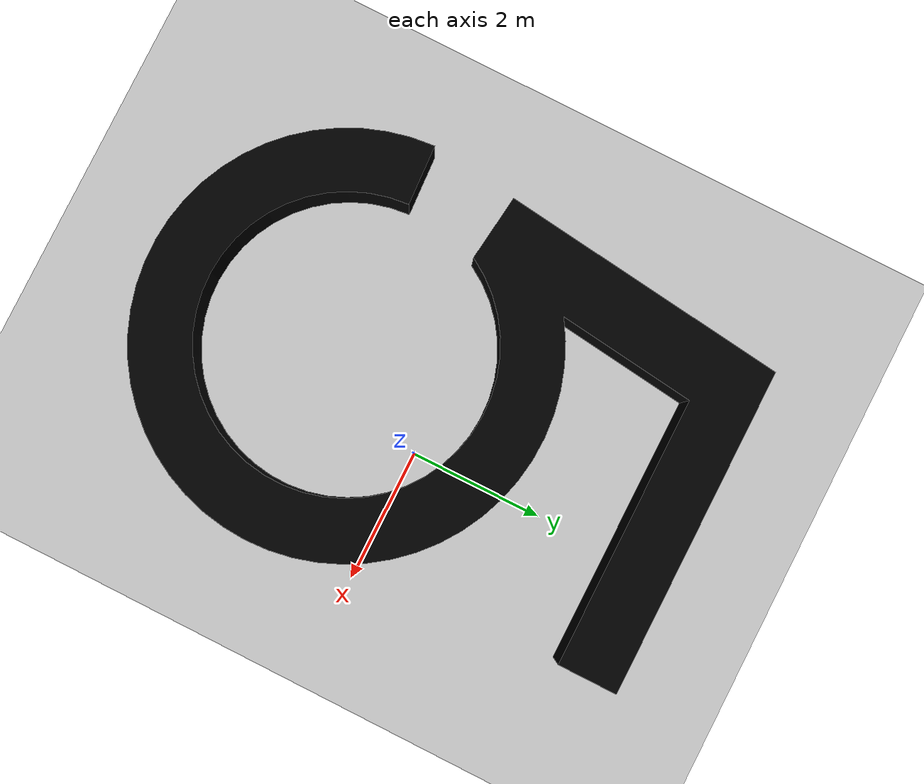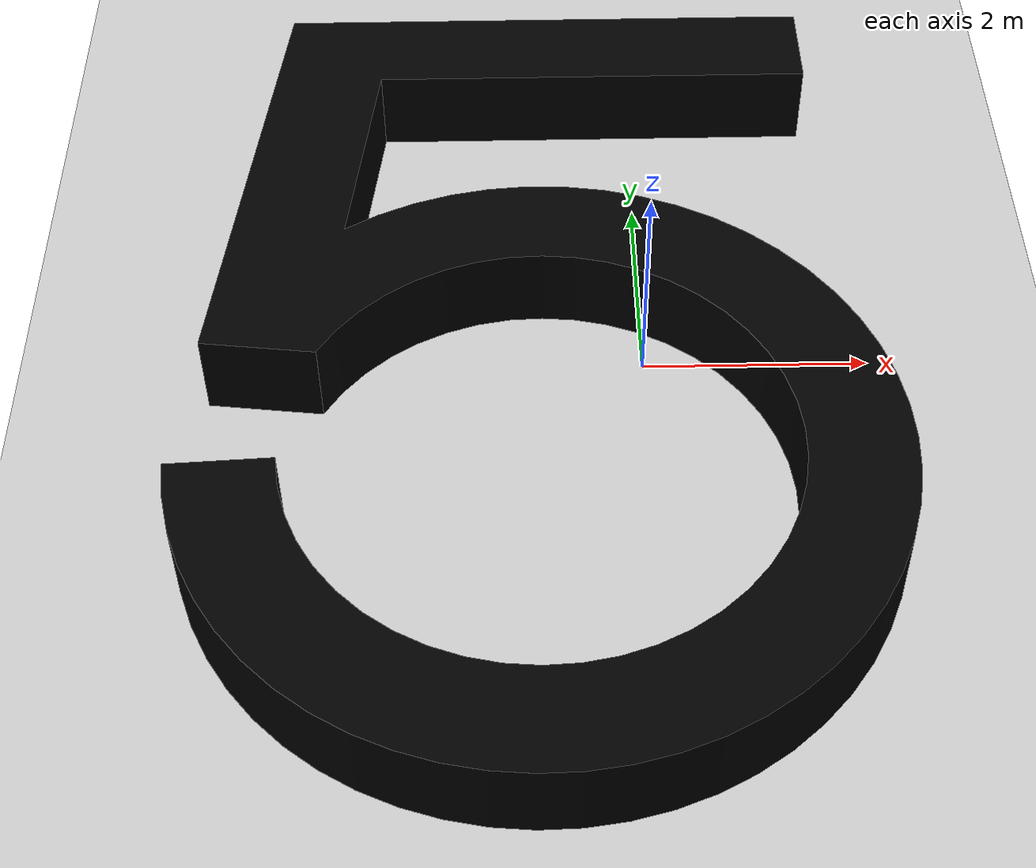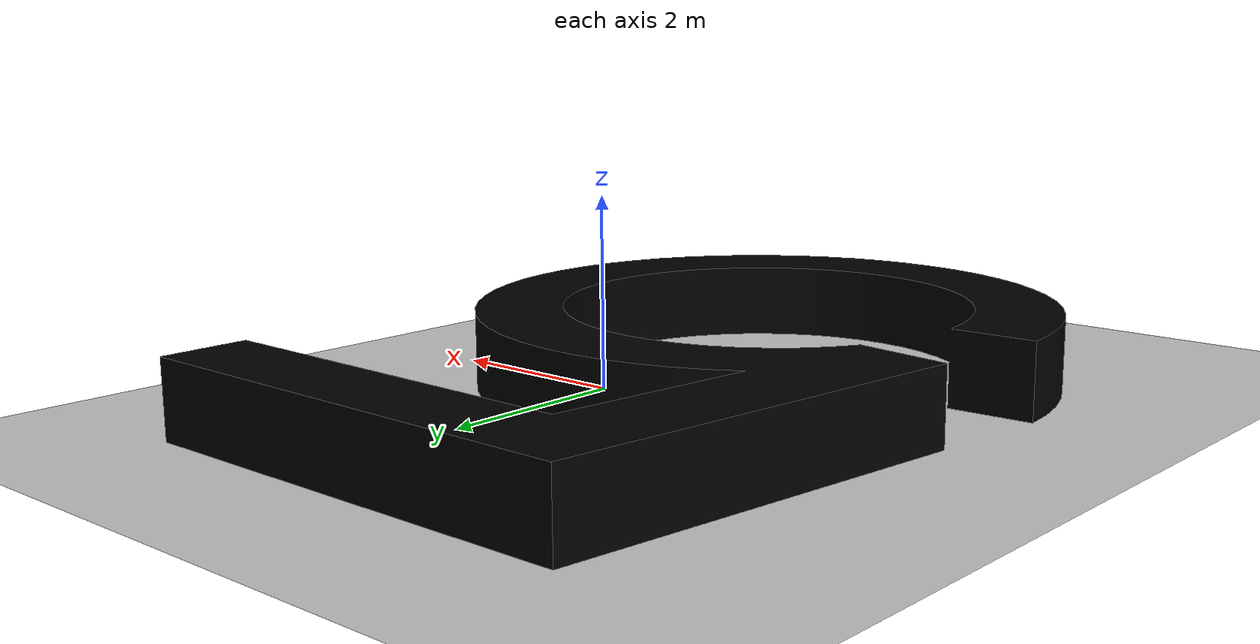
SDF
<?xml version="1.0" ?>
<sdf version="1.9">
  <world name="reactive_test">

    <gravity>0 0 -9.8</gravity>

    <plugin filename="gz-sim-physics-system" name="gz::sim::systems::Physics"/>
    <plugin filename="gz-sim-user-commands-system" name="gz::sim::systems::UserCommands"/>
    <plugin filename="gz-sim-scene-broadcaster-system" name="gz::sim::systems::SceneBroadcaster"/>
    <plugin filename="gz-sim-sensors-system" name="gz::sim::systems::Sensors">
      <render_engine>ogre2</render_engine>
    </plugin>

    <light name="sun" type="directional">
      <cast_shadows>true</cast_shadows>
      <pose>0 0 10 0 0 0</pose>
      <diffuse>0.8 0.8 0.8 1</diffuse>
      <specular>0.2 0.2 0.2 1</specular>
      <direction>-0.5 0.1 -0.9</direction>
    </light>

    <model name="ground_plane">
      <static>true</static>
      <link name="link">
        <collision name="collision">
          <geometry>
            <plane>
              <normal>0 0 1</normal>
              <size>30 30</size>
            </plane>
          </geometry>
        </collision>
        <visual name="visual">
          <geometry>
            <plane>
              <normal>0 0 1</normal>
              <size>30 30</size>
            </plane>
          </geometry>
          <material>
            <ambient>0.8 0.8 0.8 1</ambient>
            <diffuse>0.8 0.8 0.8 1</diffuse>
          </material>
        </visual>
      </link>
    </model>

    <model name="shape_5_walls">
      <static>true</static>
      <pose>-4.0 4.0 0 1.5708 0 0</pose>
      <link name="walls_link">
        <collision name="collision">
          <geometry>
            <mesh>
              <uri>shape_5.STL</uri>
              <scale>100 100 100</scale>
            </mesh>
          </geometry>
        </collision>

        <visual name="visual">
          <geometry>
            <mesh>
              <uri>shape_5.STL</uri>
              <scale>100 100 100</scale>
            </mesh>
          </geometry>
          <material>
            <ambient>0 0 0 1</ambient>
            <diffuse>0 0 0 1</diffuse>
          </material>
        </visual>
      </link>
    </model>

  </world>
</sdf>
